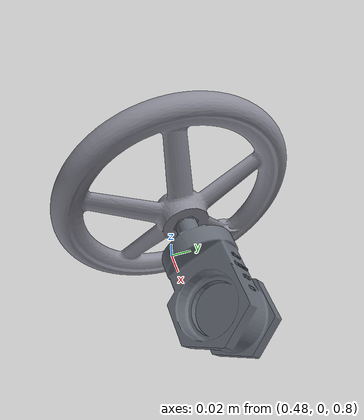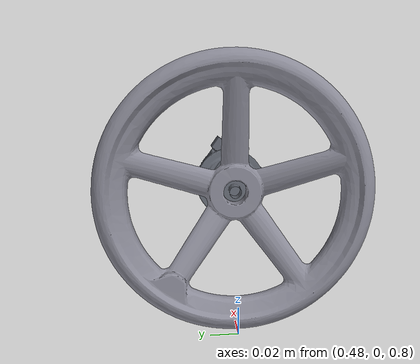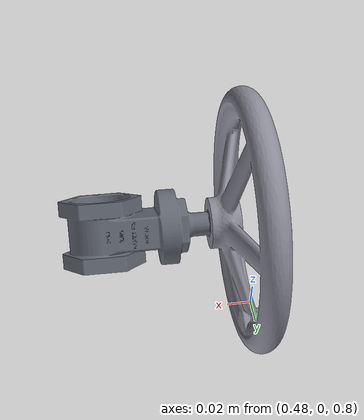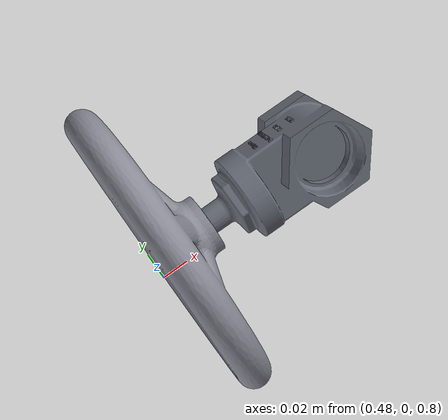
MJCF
<mujoco model="valve_rig">
  <compiler angle="radian"/>

  <default>
    <default class="valve_rim">
      <geom friction="5 1.0 0.5"/>
    </default>
  </default>

  <asset>
    <!--
      Handwheel mesh: extracted from valve_rig.usd (mesh_50_AL_250_B7_8_A_stl).
      Local coords in mm. Scale 0.0008 = 0.08*0.01 (USD xform chain).
      Result: ~0.20 m diameter flat disk.
    -->
    <mesh name="handwheel" file="../meshes_valve/handwheel.STL" scale="0.0008 0.0008 0.0008"/>
    <mesh name="valve_body" file="../meshes_valve/valve_body.STL" scale="0.0008 0.0008 0.0008"/>
  </asset>

  <worldbody>
    <body name="valve_base" pos="0.60 0.0 0.90" quat="0.6294 -0.3222 0.6294 -0.3222">

      <geom name="valve_casing" type="mesh" mesh="valve_body"
            pos="0 0 0" euler="-1.5708 0 0"
            contype="0" conaffinity="0" group="1"
            rgba="0.40 0.42 0.46 1" density="0"/>

      <body name="valve_wheel" pos="0 0 -0.1">
        <joint name="valve_joint" type="hinge" axis="0 0 1"
               damping="0.5" frictionloss="2.0" stiffness="0.0"
               limited="true" range="9.42 50.27"/>

        <geom name="handwheel_visual" type="mesh" mesh="handwheel"
              pos="0 0 0.022"
              contype="0" conaffinity="0" group="1"
              rgba="0.55 0.55 0.60 1" density="0"/>

        <!-- seg 0: angle=0    pos=(0.000,  0.100) -->
        <geom name="rim_0" class="valve_rim" type="cylinder" size="0.012 0.020"
              pos="0.000  0.090 -0.009" euler="0 1.5708 0"
              rgba="0.7 0.15 0.15 0" mass="0.08"/>
        <!-- seg 1: angle=45   pos=(0.0707, 0.0707) -->
        <geom name="rim_1" class="valve_rim" type="cylinder" size="0.012 0.020"
              pos="0.0636  0.0636 -0.009" euler="0 1.5708 0.7854"
              rgba="0.7 0.15 0.15 0" mass="0.08"/>
        <!-- seg 2: angle=90   pos=(0.100,  0.000) -->
        <geom name="rim_2" class="valve_rim" type="cylinder" size="0.012 0.020"
              pos="0.090  0.000 -0.009" euler="1.5708 0 0"
              rgba="0.7 0.15 0.15 0" mass="0.08"/>
        <!-- seg 3: angle=135  pos=(0.0707,-0.0707) -->
        <geom name="rim_3" class="valve_rim" type="cylinder" size="0.012 0.020"
              pos="0.0636 -0.0636 -0.009" euler="0 1.5708 2.3562"
              rgba="0.7 0.15 0.15 0" mass="0.08"/>
        <!-- seg 4: angle=180  pos=(0.000, -0.100) -->
        <geom name="rim_4" class="valve_rim" type="cylinder" size="0.012 0.020"
              pos="0.000 -0.090 -0.009" euler="0 1.5708 0"
              rgba="0.7 0.15 0.15 0" mass="0.08"/>
        <!-- seg 5: angle=225  pos=(-0.0707,-0.0707) -->
        <geom name="rim_5" class="valve_rim" type="cylinder" size="0.012 0.020"
              pos="-0.0636 -0.0636 -0.009" euler="0 1.5708 0.7854"
              rgba="0.7 0.15 0.15 0" mass="0.08"/>
        <!-- seg 6: angle=270  pos=(-0.100,  0.000) -->
        <geom name="rim_6" class="valve_rim" type="cylinder" size="0.012 0.020"
              pos="-0.090  0.000 -0.009" euler="1.5708 0 0"
              rgba="0.7 0.15 0.15 0" mass="0.08"/>
        <!-- seg 7: angle=315  pos=(-0.0707, 0.0707) -->
        <geom name="rim_7" class="valve_rim" type="cylinder" size="0.012 0.020"
              pos="-0.0636  0.0636 -0.009" euler="0 1.5708 2.3562"
              rgba="0.7 0.15 0.15 0" mass="0.08"/>

        <!-- Hub collision cylinder -->
        <geom name="valve_hub" type="cylinder" size="0.035 0.015"
              pos="0 0 0.005"
              rgba="0.35 0.35 0.40 0" mass="0.5"/>

        <!--
          Spokes: 4 box beams.
        -->
        <geom name="spoke_0" type="box" size="0.006 0.006 0.085"
              pos="0.000  0.052 -0.006" euler="0 1.5708 0"
              rgba="0.5 0.5 0.55 0" mass="0.03"/>
        <geom name="spoke_1" type="box" size="0.006 0.006 0.085"
              pos="0.052  0.000 -0.006" euler="1.5708 0 0"
              rgba="0.5 0.5 0.55 0" mass="0.03"/>
        <geom name="spoke_2" type="box" size="0.006 0.006 0.085"
              pos="0.000 -0.052 -0.006" euler="0 1.5708 0"
              rgba="0.5 0.5 0.55 0" mass="0.03"/>
        <geom name="spoke_3" type="box" size="0.006 0.006 0.085"
              pos="-0.052  0.000 -0.006" euler="1.5708 0 0"
              rgba="0.5 0.5 0.55 0" mass="0.03"/>

      </body><!-- valve_wheel -->
    </body><!-- valve_base -->
  </worldbody>

</mujoco>
